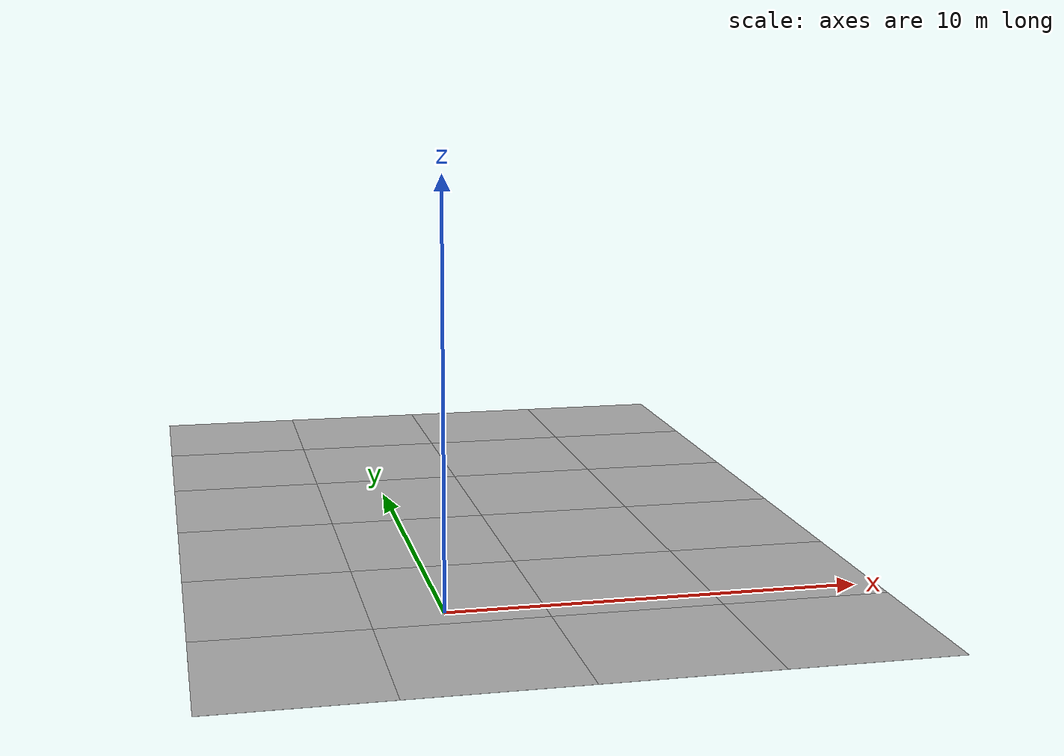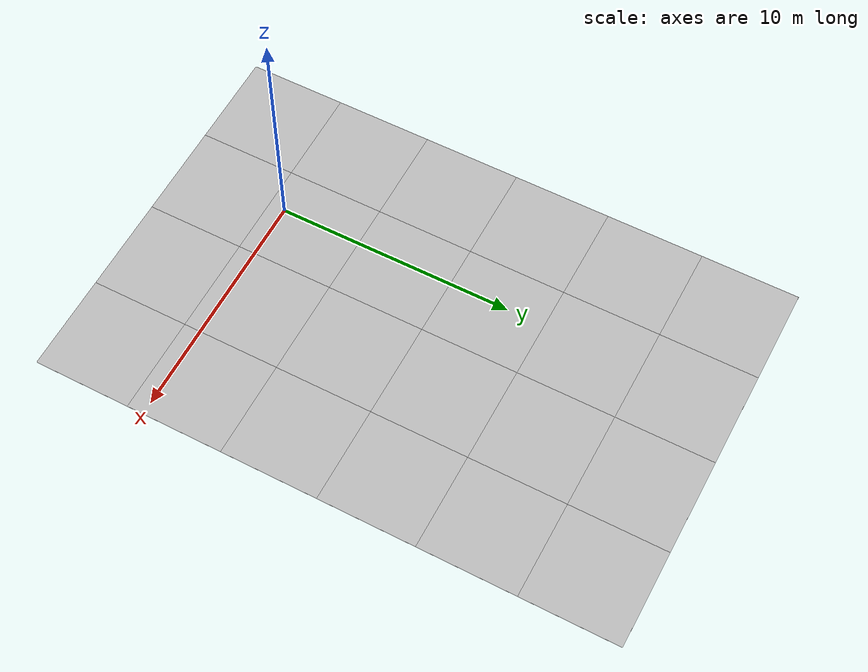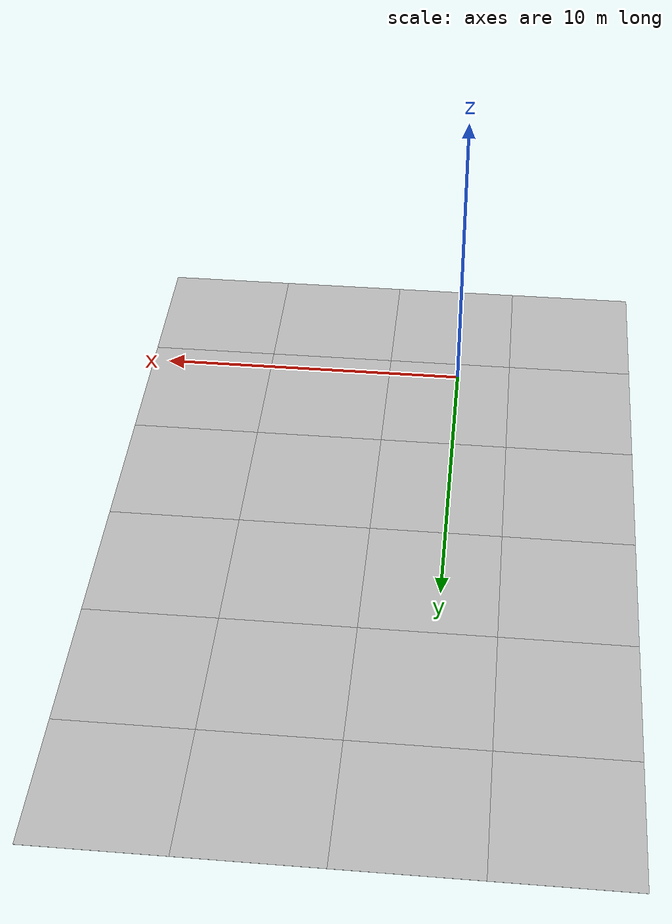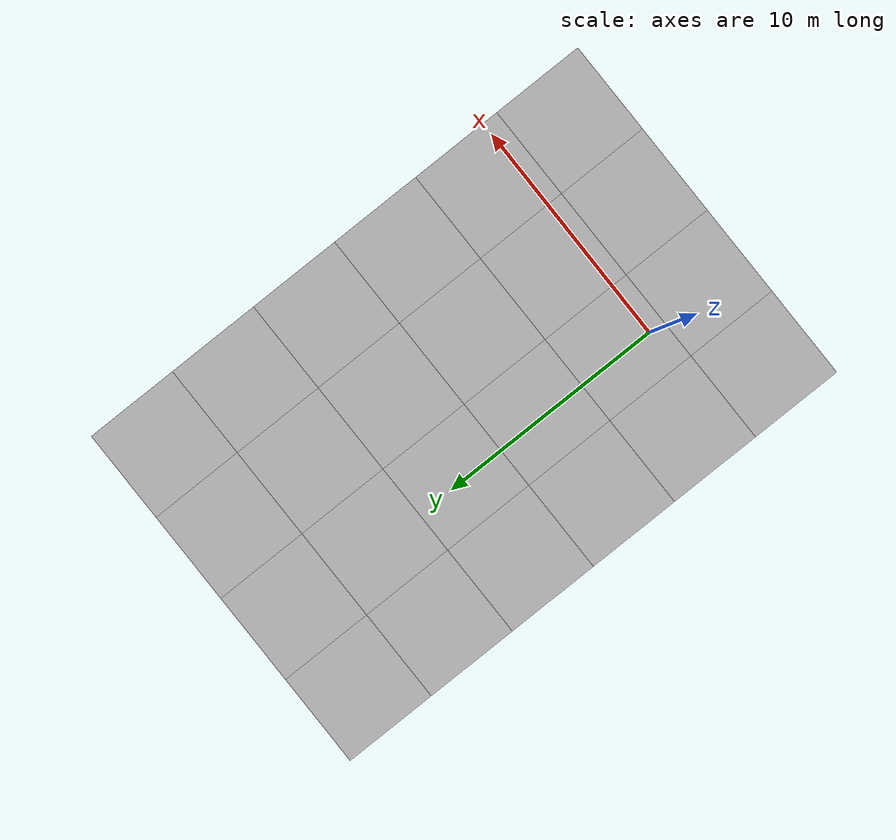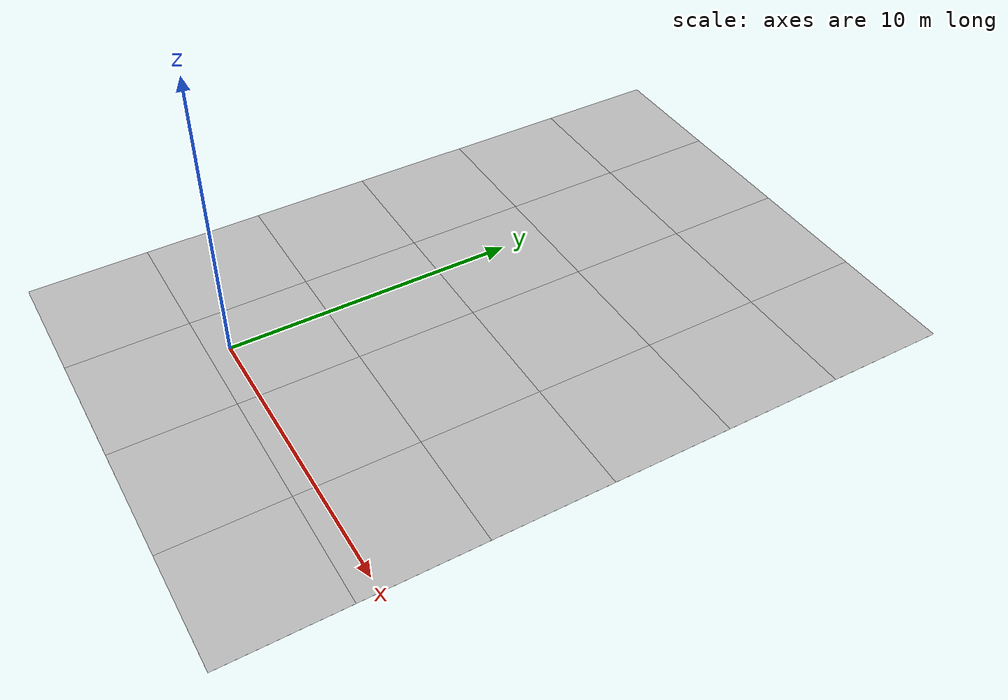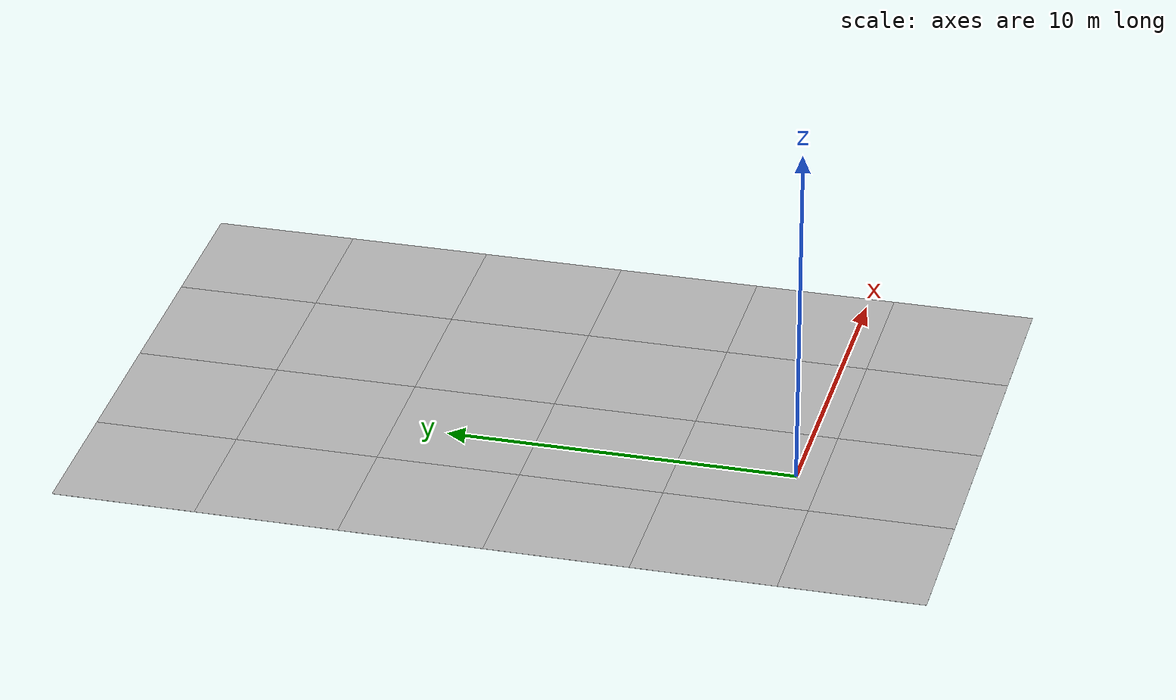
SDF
<sdf version='1.6'><world name='default'>
    <light name='sun_light' type='directional'>
      <pose frame=''>0 0 10 0 -0 0</pose>
      <diffuse>0.5 0.5 0.5 1</diffuse>
      <specular>0.1 0.1 0.1 1</specular>
      <direction>0.1 0.1 -0.9</direction>
      <attenuation>
        <range>20</range>
        <constant>0.5</constant>
        <linear>0.01</linear>
        <quadratic>0.001</quadratic>
      </attenuation>
      <cast_shadows>1</cast_shadows>
    </light>

    <model name='Tile/0-0'>
      <static>1</static>
      <link name='link'>
        <collision name='collision'>
          <geometry>
            <plane>
              <normal>0 0 1</normal>
              <size>4.096 4.096</size>
            </plane>
          </geometry>
          <surface>
            <friction>
              <ode>
                <mu>100</mu>
                <mu2>50</mu2>
              </ode>
              <torsional>
                <ode/>
              </torsional>
            </friction>
            <contact>
              <ode/>
            </contact>
            <bounce/>
          </surface>
          <max_contacts>10</max_contacts>
        </collision>
        <visual name='visual'>
          <cast_shadows>0</cast_shadows>
          <geometry>
            <plane>
              <normal>0 0 1</normal>
              <size>4.096 4.096</size>
            </plane>
          </geometry>
          <material>
            <script>
              <uri>file://materials/scripts</uri>
              <uri>file://materials/textures</uri>
              <name>Tile/5eab350b8220ac9944dbdfa4ac3288c7c17e24c3bf5df0dfcf6173d64dae00a1</name>
            </script>
          </material>
        </visual>
        <self_collide>0</self_collide>
        <enable_wind>0</enable_wind>
        <kinematic>0</kinematic>
      </link>
      <pose frame=''>-3.79841016151377 -2.751999999999999 0 0 -0 0</pose>
    </model>

    <model name='Tile/0-1'>
      <static>1</static>
      <link name='link'>
        <collision name='collision'>
          <geometry>
            <plane>
              <normal>0 0 1</normal>
              <size>4.096 4.096</size>
            </plane>
          </geometry>
          <surface>
            <friction>
              <ode>
                <mu>100</mu>
                <mu2>50</mu2>
              </ode>
              <torsional>
                <ode/>
              </torsional>
            </friction>
            <contact>
              <ode/>
            </contact>
            <bounce/>
          </surface>
          <max_contacts>10</max_contacts>
        </collision>
        <visual name='visual'>
          <cast_shadows>0</cast_shadows>
          <geometry>
            <plane>
              <normal>0 0 1</normal>
              <size>4.096 4.096</size>
            </plane>
          </geometry>
          <material>
            <script>
              <uri>file://materials/scripts</uri>
              <uri>file://materials/textures</uri>
              <name>Tile/5eab350b8220ac9944dbdfa4ac3288c7c17e24c3bf5df0dfcf6173d64dae00a1</name>
            </script>
          </material>
        </visual>
        <self_collide>0</self_collide>
        <enable_wind>0</enable_wind>
        <kinematic>0</kinematic>
      </link>
      <pose frame=''>-3.79841016151377 1.3440000000000012 0 0 -0 0</pose>
    </model>

    <model name='Tile/0-2'>
      <static>1</static>
      <link name='link'>
        <collision name='collision'>
          <geometry>
            <plane>
              <normal>0 0 1</normal>
              <size>4.096 4.096</size>
            </plane>
          </geometry>
          <surface>
            <friction>
              <ode>
                <mu>100</mu>
                <mu2>50</mu2>
              </ode>
              <torsional>
                <ode/>
              </torsional>
            </friction>
            <contact>
              <ode/>
            </contact>
            <bounce/>
          </surface>
          <max_contacts>10</max_contacts>
        </collision>
        <visual name='visual'>
          <cast_shadows>0</cast_shadows>
          <geometry>
            <plane>
              <normal>0 0 1</normal>
              <size>4.096 4.096</size>
            </plane>
          </geometry>
          <material>
            <script>
              <uri>file://materials/scripts</uri>
              <uri>file://materials/textures</uri>
              <name>Tile/5eab350b8220ac9944dbdfa4ac3288c7c17e24c3bf5df0dfcf6173d64dae00a1</name>
            </script>
          </material>
        </visual>
        <self_collide>0</self_collide>
        <enable_wind>0</enable_wind>
        <kinematic>0</kinematic>
      </link>
      <pose frame=''>-3.79841016151377 5.440000000000001 0 0 -0 0</pose>
    </model>

    <model name='Tile/0-3'>
      <static>1</static>
      <link name='link'>
        <collision name='collision'>
          <geometry>
            <plane>
              <normal>0 0 1</normal>
              <size>4.096 4.096</size>
            </plane>
          </geometry>
          <surface>
            <friction>
              <ode>
                <mu>100</mu>
                <mu2>50</mu2>
              </ode>
              <torsional>
                <ode/>
              </torsional>
            </friction>
            <contact>
              <ode/>
            </contact>
            <bounce/>
          </surface>
          <max_contacts>10</max_contacts>
        </collision>
        <visual name='visual'>
          <cast_shadows>0</cast_shadows>
          <geometry>
            <plane>
              <normal>0 0 1</normal>
              <size>4.096 4.096</size>
            </plane>
          </geometry>
          <material>
            <script>
              <uri>file://materials/scripts</uri>
              <uri>file://materials/textures</uri>
              <name>Tile/5eab350b8220ac9944dbdfa4ac3288c7c17e24c3bf5df0dfcf6173d64dae00a1</name>
            </script>
          </material>
        </visual>
        <self_collide>0</self_collide>
        <enable_wind>0</enable_wind>
        <kinematic>0</kinematic>
      </link>
      <pose frame=''>-3.79841016151377 9.536000000000001 0 0 -0 0</pose>
    </model>

    <model name='Tile/0-4'>
      <static>1</static>
      <link name='link'>
        <collision name='collision'>
          <geometry>
            <plane>
              <normal>0 0 1</normal>
              <size>4.096 4.096</size>
            </plane>
          </geometry>
          <surface>
            <friction>
              <ode>
                <mu>100</mu>
                <mu2>50</mu2>
              </ode>
              <torsional>
                <ode/>
              </torsional>
            </friction>
            <contact>
              <ode/>
            </contact>
            <bounce/>
          </surface>
          <max_contacts>10</max_contacts>
        </collision>
        <visual name='visual'>
          <cast_shadows>0</cast_shadows>
          <geometry>
            <plane>
              <normal>0 0 1</normal>
              <size>4.096 4.096</size>
            </plane>
          </geometry>
          <material>
            <script>
              <uri>file://materials/scripts</uri>
              <uri>file://materials/textures</uri>
              <name>Tile/cf99e91356e244143fa5c436b8434398e1f57af9e2bd994557295b91ae997e33</name>
            </script>
          </material>
        </visual>
        <self_collide>0</self_collide>
        <enable_wind>0</enable_wind>
        <kinematic>0</kinematic>
      </link>
      <pose frame=''>-3.79841016151377 13.632 0 0 -0 0</pose>
    </model>

    <model name='Tile/0-5'>
      <static>1</static>
      <link name='link'>
        <collision name='collision'>
          <geometry>
            <plane>
              <normal>0 0 1</normal>
              <size>4.096 4.096</size>
            </plane>
          </geometry>
          <surface>
            <friction>
              <ode>
                <mu>100</mu>
                <mu2>50</mu2>
              </ode>
              <torsional>
                <ode/>
              </torsional>
            </friction>
            <contact>
              <ode/>
            </contact>
            <bounce/>
          </surface>
          <max_contacts>10</max_contacts>
        </collision>
        <visual name='visual'>
          <cast_shadows>0</cast_shadows>
          <geometry>
            <plane>
              <normal>0 0 1</normal>
              <size>4.096 4.096</size>
            </plane>
          </geometry>
          <material>
            <script>
              <uri>file://materials/scripts</uri>
              <uri>file://materials/textures</uri>
              <name>Tile/5eab350b8220ac9944dbdfa4ac3288c7c17e24c3bf5df0dfcf6173d64dae00a1</name>
            </script>
          </material>
        </visual>
        <self_collide>0</self_collide>
        <enable_wind>0</enable_wind>
        <kinematic>0</kinematic>
      </link>
      <pose frame=''>-3.79841016151377 17.728 0 0 -0 0</pose>
    </model>

    <model name='Tile/1-0'>
      <static>1</static>
      <link name='link'>
        <collision name='collision'>
          <geometry>
            <plane>
              <normal>0 0 1</normal>
              <size>4.096 4.096</size>
            </plane>
          </geometry>
          <surface>
            <friction>
              <ode>
                <mu>100</mu>
                <mu2>50</mu2>
              </ode>
              <torsional>
                <ode/>
              </torsional>
            </friction>
            <contact>
              <ode/>
            </contact>
            <bounce/>
          </surface>
          <max_contacts>10</max_contacts>
        </collision>
        <visual name='visual'>
          <cast_shadows>0</cast_shadows>
          <geometry>
            <plane>
              <normal>0 0 1</normal>
              <size>4.096 4.096</size>
            </plane>
          </geometry>
          <material>
            <script>
              <uri>file://materials/scripts</uri>
              <uri>file://materials/textures</uri>
              <name>Tile/cef82c66b992363c1282afeed158de4422c892b1004a8bac1e215b28a5e143b3</name>
            </script>
          </material>
        </visual>
        <self_collide>0</self_collide>
        <enable_wind>0</enable_wind>
        <kinematic>0</kinematic>
      </link>
      <pose frame=''>0.2975898384862301 -2.751999999999999 0 0 -0 0</pose>
    </model>

    <model name='Tile/1-1'>
      <static>1</static>
      <link name='link'>
        <collision name='collision'>
          <geometry>
            <plane>
              <normal>0 0 1</normal>
              <size>4.096 4.096</size>
            </plane>
          </geometry>
          <surface>
            <friction>
              <ode>
                <mu>100</mu>
                <mu2>50</mu2>
              </ode>
              <torsional>
                <ode/>
              </torsional>
            </friction>
            <contact>
              <ode/>
            </contact>
            <bounce/>
          </surface>
          <max_contacts>10</max_contacts>
        </collision>
        <visual name='visual'>
          <cast_shadows>0</cast_shadows>
          <geometry>
            <plane>
              <normal>0 0 1</normal>
              <size>4.096 4.096</size>
            </plane>
          </geometry>
          <material>
            <script>
              <uri>file://materials/scripts</uri>
              <uri>file://materials/textures</uri>
              <name>Tile/c2887f9510fde6ba651ece6979febfa98d905553bc70959c75fc685096abb016</name>
            </script>
          </material>
        </visual>
        <self_collide>0</self_collide>
        <enable_wind>0</enable_wind>
        <kinematic>0</kinematic>
      </link>
      <pose frame=''>0.2975898384862301 1.3440000000000012 0 0 -0 0</pose>
    </model>

    <model name='Tile/1-2'>
      <static>1</static>
      <link name='link'>
        <collision name='collision'>
          <geometry>
            <plane>
              <normal>0 0 1</normal>
              <size>4.096 4.096</size>
            </plane>
          </geometry>
          <surface>
            <friction>
              <ode>
                <mu>100</mu>
                <mu2>50</mu2>
              </ode>
              <torsional>
                <ode/>
              </torsional>
            </friction>
            <contact>
              <ode/>
            </contact>
            <bounce/>
          </surface>
          <max_contacts>10</max_contacts>
        </collision>
        <visual name='visual'>
          <cast_shadows>0</cast_shadows>
          <geometry>
            <plane>
              <normal>0 0 1</normal>
              <size>4.096 4.096</size>
            </plane>
          </geometry>
          <material>
            <script>
              <uri>file://materials/scripts</uri>
              <uri>file://materials/textures</uri>
              <name>Tile/21b571a45d924c85e8dc16fceb6530c1793f219067e49f3ef5e03b8396be9758</name>
            </script>
          </material>
        </visual>
        <self_collide>0</self_collide>
        <enable_wind>0</enable_wind>
        <kinematic>0</kinematic>
      </link>
      <pose frame=''>0.2975898384862301 5.440000000000001 0 0 -0 0</pose>
    </model>

    <model name='Tile/1-3'>
      <static>1</static>
      <link name='link'>
        <collision name='collision'>
          <geometry>
            <plane>
              <normal>0 0 1</normal>
              <size>4.096 4.096</size>
            </plane>
          </geometry>
          <surface>
            <friction>
              <ode>
                <mu>100</mu>
                <mu2>50</mu2>
              </ode>
              <torsional>
                <ode/>
              </torsional>
            </friction>
            <contact>
              <ode/>
            </contact>
            <bounce/>
          </surface>
          <max_contacts>10</max_contacts>
        </collision>
        <visual name='visual'>
          <cast_shadows>0</cast_shadows>
          <geometry>
            <plane>
              <normal>0 0 1</normal>
              <size>4.096 4.096</size>
            </plane>
          </geometry>
          <material>
            <script>
              <uri>file://materials/scripts</uri>
              <uri>file://materials/textures</uri>
              <name>Tile/1f52e355cd87eef672b1a7c92b42d39821269ce6e8bd311fda9f38a739e6bd50</name>
            </script>
          </material>
        </visual>
        <self_collide>0</self_collide>
        <enable_wind>0</enable_wind>
        <kinematic>0</kinematic>
      </link>
      <pose frame=''>0.2975898384862301 9.536000000000001 0 0 -0 0</pose>
    </model>

    <model name='Tile/1-4'>
      <static>1</static>
      <link name='link'>
        <collision name='collision'>
          <geometry>
            <plane>
              <normal>0 0 1</normal>
              <size>4.096 4.096</size>
            </plane>
          </geometry>
          <surface>
            <friction>
              <ode>
                <mu>100</mu>
                <mu2>50</mu2>
              </ode>
              <torsional>
                <ode/>
              </torsional>
            </friction>
            <contact>
              <ode/>
            </contact>
            <bounce/>
          </surface>
          <max_contacts>10</max_contacts>
        </collision>
        <visual name='visual'>
          <cast_shadows>0</cast_shadows>
          <geometry>
            <plane>
              <normal>0 0 1</normal>
              <size>4.096 4.096</size>
            </plane>
          </geometry>
          <material>
            <script>
              <uri>file://materials/scripts</uri>
              <uri>file://materials/textures</uri>
              <name>Tile/e8f1da176f409189f64399a46c52eb3791e751b70755a1289ae5a8298d0cc6d4</name>
            </script>
          </material>
        </visual>
        <self_collide>0</self_collide>
        <enable_wind>0</enable_wind>
        <kinematic>0</kinematic>
      </link>
      <pose frame=''>0.2975898384862301 13.632 0 0 -0 0</pose>
    </model>

    <model name='Tile/1-5'>
      <static>1</static>
      <link name='link'>
        <collision name='collision'>
          <geometry>
            <plane>
              <normal>0 0 1</normal>
              <size>4.096 4.096</size>
            </plane>
          </geometry>
          <surface>
            <friction>
              <ode>
                <mu>100</mu>
                <mu2>50</mu2>
              </ode>
              <torsional>
                <ode/>
              </torsional>
            </friction>
            <contact>
              <ode/>
            </contact>
            <bounce/>
          </surface>
          <max_contacts>10</max_contacts>
        </collision>
        <visual name='visual'>
          <cast_shadows>0</cast_shadows>
          <geometry>
            <plane>
              <normal>0 0 1</normal>
              <size>4.096 4.096</size>
            </plane>
          </geometry>
          <material>
            <script>
              <uri>file://materials/scripts</uri>
              <uri>file://materials/textures</uri>
              <name>Tile/5eab350b8220ac9944dbdfa4ac3288c7c17e24c3bf5df0dfcf6173d64dae00a1</name>
            </script>
          </material>
        </visual>
        <self_collide>0</self_collide>
        <enable_wind>0</enable_wind>
        <kinematic>0</kinematic>
      </link>
      <pose frame=''>0.2975898384862301 17.728 0 0 -0 0</pose>
    </model>

    <model name='Tile/2-0'>
      <static>1</static>
      <link name='link'>
        <collision name='collision'>
          <geometry>
            <plane>
              <normal>0 0 1</normal>
              <size>4.096 4.096</size>
            </plane>
          </geometry>
          <surface>
            <friction>
              <ode>
                <mu>100</mu>
                <mu2>50</mu2>
              </ode>
              <torsional>
                <ode/>
              </torsional>
            </friction>
            <contact>
              <ode/>
            </contact>
            <bounce/>
          </surface>
          <max_contacts>10</max_contacts>
        </collision>
        <visual name='visual'>
          <cast_shadows>0</cast_shadows>
          <geometry>
            <plane>
              <normal>0 0 1</normal>
              <size>4.096 4.096</size>
            </plane>
          </geometry>
          <material>
            <script>
              <uri>file://materials/scripts</uri>
              <uri>file://materials/textures</uri>
              <name>Tile/0823cef1a63b7f73178edd2fe6f65c97ba78db355c5c6b92329acccefe1ccff7</name>
            </script>
          </material>
        </visual>
        <self_collide>0</self_collide>
        <enable_wind>0</enable_wind>
        <kinematic>0</kinematic>
      </link>
      <pose frame=''>4.39358983848623 -2.751999999999999 0 0 -0 0</pose>
    </model>

    <model name='Tile/2-1'>
      <static>1</static>
      <link name='link'>
        <collision name='collision'>
          <geometry>
            <plane>
              <normal>0 0 1</normal>
              <size>4.096 4.096</size>
            </plane>
          </geometry>
          <surface>
            <friction>
              <ode>
                <mu>100</mu>
                <mu2>50</mu2>
              </ode>
              <torsional>
                <ode/>
              </torsional>
            </friction>
            <contact>
              <ode/>
            </contact>
            <bounce/>
          </surface>
          <max_contacts>10</max_contacts>
        </collision>
        <visual name='visual'>
          <cast_shadows>0</cast_shadows>
          <geometry>
            <plane>
              <normal>0 0 1</normal>
              <size>4.096 4.096</size>
            </plane>
          </geometry>
          <material>
            <script>
              <uri>file://materials/scripts</uri>
              <uri>file://materials/textures</uri>
              <name>Tile/0d080487a12ecbc984fade3fc8d161ec3d5f1de3175a87bde86e96ed23132648</name>
            </script>
          </material>
        </visual>
        <self_collide>0</self_collide>
        <enable_wind>0</enable_wind>
        <kinematic>0</kinematic>
      </link>
      <pose frame=''>4.39358983848623 1.3440000000000012 0 0 -0 0</pose>
    </model>

    <model name='Tile/2-2'>
      <static>1</static>
      <link name='link'>
        <collision name='collision'>
          <geometry>
            <plane>
              <normal>0 0 1</normal>
              <size>4.096 4.096</size>
            </plane>
          </geometry>
          <surface>
            <friction>
              <ode>
                <mu>100</mu>
                <mu2>50</mu2>
              </ode>
              <torsional>
                <ode/>
              </torsional>
            </friction>
            <contact>
              <ode/>
            </contact>
            <bounce/>
          </surface>
          <max_contacts>10</max_contacts>
        </collision>
        <visual name='visual'>
          <cast_shadows>0</cast_shadows>
          <geometry>
            <plane>
              <normal>0 0 1</normal>
              <size>4.096 4.096</size>
            </plane>
          </geometry>
          <material>
            <script>
              <uri>file://materials/scripts</uri>
              <uri>file://materials/textures</uri>
              <name>Tile/5eab350b8220ac9944dbdfa4ac3288c7c17e24c3bf5df0dfcf6173d64dae00a1</name>
            </script>
          </material>
        </visual>
        <self_collide>0</self_collide>
        <enable_wind>0</enable_wind>
        <kinematic>0</kinematic>
      </link>
      <pose frame=''>4.39358983848623 5.440000000000001 0 0 -0 0</pose>
    </model>

    <model name='Tile/2-3'>
      <static>1</static>
      <link name='link'>
        <collision name='collision'>
          <geometry>
            <plane>
              <normal>0 0 1</normal>
              <size>4.096 4.096</size>
            </plane>
          </geometry>
          <surface>
            <friction>
              <ode>
                <mu>100</mu>
                <mu2>50</mu2>
              </ode>
              <torsional>
                <ode/>
              </torsional>
            </friction>
            <contact>
              <ode/>
            </contact>
            <bounce/>
          </surface>
          <max_contacts>10</max_contacts>
        </collision>
        <visual name='visual'>
          <cast_shadows>0</cast_shadows>
          <geometry>
            <plane>
              <normal>0 0 1</normal>
              <size>4.096 4.096</size>
            </plane>
          </geometry>
          <material>
            <script>
              <uri>file://materials/scripts</uri>
              <uri>file://materials/textures</uri>
              <name>Tile/5eab350b8220ac9944dbdfa4ac3288c7c17e24c3bf5df0dfcf6173d64dae00a1</name>
            </script>
          </material>
        </visual>
        <self_collide>0</self_collide>
        <enable_wind>0</enable_wind>
        <kinematic>0</kinematic>
      </link>
      <pose frame=''>4.39358983848623 9.536000000000001 0 0 -0 0</pose>
    </model>

    <model name='Tile/2-4'>
      <static>1</static>
      <link name='link'>
        <collision name='collision'>
          <geometry>
            <plane>
              <normal>0 0 1</normal>
              <size>4.096 4.096</size>
            </plane>
          </geometry>
          <surface>
            <friction>
              <ode>
                <mu>100</mu>
                <mu2>50</mu2>
              </ode>
              <torsional>
                <ode/>
              </torsional>
            </friction>
            <contact>
              <ode/>
            </contact>
            <bounce/>
          </surface>
          <max_contacts>10</max_contacts>
        </collision>
        <visual name='visual'>
          <cast_shadows>0</cast_shadows>
          <geometry>
            <plane>
              <normal>0 0 1</normal>
              <size>4.096 4.096</size>
            </plane>
          </geometry>
          <material>
            <script>
              <uri>file://materials/scripts</uri>
              <uri>file://materials/textures</uri>
              <name>Tile/5eab350b8220ac9944dbdfa4ac3288c7c17e24c3bf5df0dfcf6173d64dae00a1</name>
            </script>
          </material>
        </visual>
        <self_collide>0</self_collide>
        <enable_wind>0</enable_wind>
        <kinematic>0</kinematic>
      </link>
      <pose frame=''>4.39358983848623 13.632 0 0 -0 0</pose>
    </model>

    <model name='Tile/2-5'>
      <static>1</static>
      <link name='link'>
        <collision name='collision'>
          <geometry>
            <plane>
              <normal>0 0 1</normal>
              <size>4.096 4.096</size>
            </plane>
          </geometry>
          <surface>
            <friction>
              <ode>
                <mu>100</mu>
                <mu2>50</mu2>
              </ode>
              <torsional>
                <ode/>
              </torsional>
            </friction>
            <contact>
              <ode/>
            </contact>
            <bounce/>
          </surface>
          <max_contacts>10</max_contacts>
        </collision>
        <visual name='visual'>
          <cast_shadows>0</cast_shadows>
          <geometry>
            <plane>
              <normal>0 0 1</normal>
              <size>4.096 4.096</size>
            </plane>
          </geometry>
          <material>
            <script>
              <uri>file://materials/scripts</uri>
              <uri>file://materials/textures</uri>
              <name>Tile/5eab350b8220ac9944dbdfa4ac3288c7c17e24c3bf5df0dfcf6173d64dae00a1</name>
            </script>
          </material>
        </visual>
        <self_collide>0</self_collide>
        <enable_wind>0</enable_wind>
        <kinematic>0</kinematic>
      </link>
      <pose frame=''>4.39358983848623 17.728 0 0 -0 0</pose>
    </model>

    <model name='Tile/3-0'>
      <static>1</static>
      <link name='link'>
        <collision name='collision'>
          <geometry>
            <plane>
              <normal>0 0 1</normal>
              <size>4.096 4.096</size>
            </plane>
          </geometry>
          <surface>
            <friction>
              <ode>
                <mu>100</mu>
                <mu2>50</mu2>
              </ode>
              <torsional>
                <ode/>
              </torsional>
            </friction>
            <contact>
              <ode/>
            </contact>
            <bounce/>
          </surface>
          <max_contacts>10</max_contacts>
        </collision>
        <visual name='visual'>
          <cast_shadows>0</cast_shadows>
          <geometry>
            <plane>
              <normal>0 0 1</normal>
              <size>4.096 4.096</size>
            </plane>
          </geometry>
          <material>
            <script>
              <uri>file://materials/scripts</uri>
              <uri>file://materials/textures</uri>
              <name>Tile/a57875585cc511ec2e123397ed7eb2531494b5245f6fcd79e1320b4029dd73d9</name>
            </script>
          </material>
        </visual>
        <self_collide>0</self_collide>
        <enable_wind>0</enable_wind>
        <kinematic>0</kinematic>
      </link>
      <pose frame=''>8.48958983848623 -2.751999999999999 0 0 -0 0</pose>
    </model>

    <model name='Tile/3-1'>
      <static>1</static>
      <link name='link'>
        <collision name='collision'>
          <geometry>
            <plane>
              <normal>0 0 1</normal>
              <size>4.096 4.096</size>
            </plane>
          </geometry>
          <surface>
            <friction>
              <ode>
                <mu>100</mu>
                <mu2>50</mu2>
              </ode>
              <torsional>
                <ode/>
              </torsional>
            </friction>
            <contact>
              <ode/>
            </contact>
            <bounce/>
          </surface>
          <max_contacts>10</max_contacts>
        </collision>
        <visual name='visual'>
          <cast_shadows>0</cast_shadows>
          <geometry>
            <plane>
              <normal>0 0 1</normal>
              <size>4.096 4.096</size>
            </plane>
          </geometry>
          <material>
            <script>
              <uri>file://materials/scripts</uri>
              <uri>file://materials/textures</uri>
              <name>Tile/1315bf5fd9b1fc9f2e6f18a4a15511bc63ab1b96b315abe103c6e419e54a2e96</name>
            </script>
          </material>
        </visual>
        <self_collide>0</self_collide>
        <enable_wind>0</enable_wind>
        <kinematic>0</kinematic>
      </link>
      <pose frame=''>8.48958983848623 1.3440000000000012 0 0 -0 0</pose>
    </model>

    <model name='Tile/3-2'>
      <static>1</static>
      <link name='link'>
        <collision name='collision'>
          <geometry>
            <plane>
              <normal>0 0 1</normal>
              <size>4.096 4.096</size>
            </plane>
          </geometry>
          <surface>
            <friction>
              <ode>
                <mu>100</mu>
                <mu2>50</mu2>
              </ode>
              <torsional>
                <ode/>
              </torsional>
            </friction>
            <contact>
              <ode/>
            </contact>
            <bounce/>
          </surface>
          <max_contacts>10</max_contacts>
        </collision>
        <visual name='visual'>
          <cast_shadows>0</cast_shadows>
          <geometry>
            <plane>
              <normal>0 0 1</normal>
              <size>4.096 4.096</size>
            </plane>
          </geometry>
          <material>
            <script>
              <uri>file://materials/scripts</uri>
              <uri>file://materials/textures</uri>
              <name>Tile/5eab350b8220ac9944dbdfa4ac3288c7c17e24c3bf5df0dfcf6173d64dae00a1</name>
            </script>
          </material>
        </visual>
        <self_collide>0</self_collide>
        <enable_wind>0</enable_wind>
        <kinematic>0</kinematic>
      </link>
      <pose frame=''>8.48958983848623 5.440000000000001 0 0 -0 0</pose>
    </model>

    <model name='Tile/3-3'>
      <static>1</static>
      <link name='link'>
        <collision name='collision'>
          <geometry>
            <plane>
              <normal>0 0 1</normal>
              <size>4.096 4.096</size>
            </plane>
          </geometry>
          <surface>
            <friction>
              <ode>
                <mu>100</mu>
                <mu2>50</mu2>
              </ode>
              <torsional>
                <ode/>
              </torsional>
            </friction>
            <contact>
              <ode/>
            </contact>
            <bounce/>
          </surface>
          <max_contacts>10</max_contacts>
        </collision>
        <visual name='visual'>
          <cast_shadows>0</cast_shadows>
          <geometry>
            <plane>
              <normal>0 0 1</normal>
              <size>4.096 4.096</size>
            </plane>
          </geometry>
          <material>
            <script>
              <uri>file://materials/scripts</uri>
              <uri>file://materials/textures</uri>
              <name>Tile/5eab350b8220ac9944dbdfa4ac3288c7c17e24c3bf5df0dfcf6173d64dae00a1</name>
            </script>
          </material>
        </visual>
        <self_collide>0</self_collide>
        <enable_wind>0</enable_wind>
        <kinematic>0</kinematic>
      </link>
      <pose frame=''>8.48958983848623 9.536000000000001 0 0 -0 0</pose>
    </model>

    <model name='Tile/3-4'>
      <static>1</static>
      <link name='link'>
        <collision name='collision'>
          <geometry>
            <plane>
              <normal>0 0 1</normal>
              <size>4.096 4.096</size>
            </plane>
          </geometry>
          <surface>
            <friction>
              <ode>
                <mu>100</mu>
                <mu2>50</mu2>
              </ode>
              <torsional>
                <ode/>
              </torsional>
            </friction>
            <contact>
              <ode/>
            </contact>
            <bounce/>
          </surface>
          <max_contacts>10</max_contacts>
        </collision>
        <visual name='visual'>
          <cast_shadows>0</cast_shadows>
          <geometry>
            <plane>
              <normal>0 0 1</normal>
              <size>4.096 4.096</size>
            </plane>
          </geometry>
          <material>
            <script>
              <uri>file://materials/scripts</uri>
              <uri>file://materials/textures</uri>
              <name>Tile/5eab350b8220ac9944dbdfa4ac3288c7c17e24c3bf5df0dfcf6173d64dae00a1</name>
            </script>
          </material>
        </visual>
        <self_collide>0</self_collide>
        <enable_wind>0</enable_wind>
        <kinematic>0</kinematic>
      </link>
      <pose frame=''>8.48958983848623 13.632 0 0 -0 0</pose>
    </model>

    <model name='Tile/3-5'>
      <static>1</static>
      <link name='link'>
        <collision name='collision'>
          <geometry>
            <plane>
              <normal>0 0 1</normal>
              <size>4.096 4.096</size>
            </plane>
          </geometry>
          <surface>
            <friction>
              <ode>
                <mu>100</mu>
                <mu2>50</mu2>
              </ode>
              <torsional>
                <ode/>
              </torsional>
            </friction>
            <contact>
              <ode/>
            </contact>
            <bounce/>
          </surface>
          <max_contacts>10</max_contacts>
        </collision>
        <visual name='visual'>
          <cast_shadows>0</cast_shadows>
          <geometry>
            <plane>
              <normal>0 0 1</normal>
              <size>4.096 4.096</size>
            </plane>
          </geometry>
          <material>
            <script>
              <uri>file://materials/scripts</uri>
              <uri>file://materials/textures</uri>
              <name>Tile/5eab350b8220ac9944dbdfa4ac3288c7c17e24c3bf5df0dfcf6173d64dae00a1</name>
            </script>
          </material>
        </visual>
        <self_collide>0</self_collide>
        <enable_wind>0</enable_wind>
        <kinematic>0</kinematic>
      </link>
      <pose frame=''>8.48958983848623 17.728 0 0 -0 0</pose>
    </model>
    </world></sdf>
